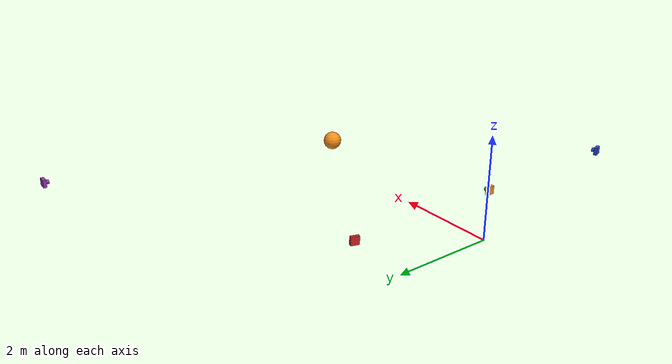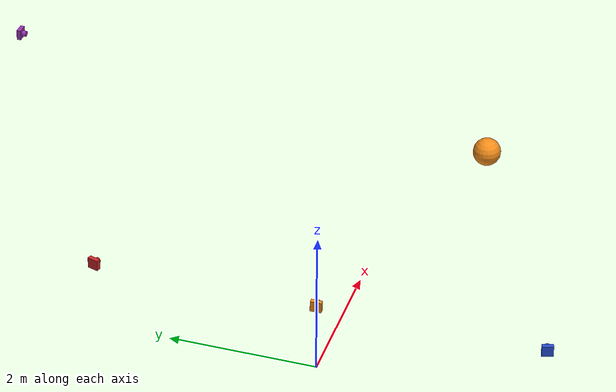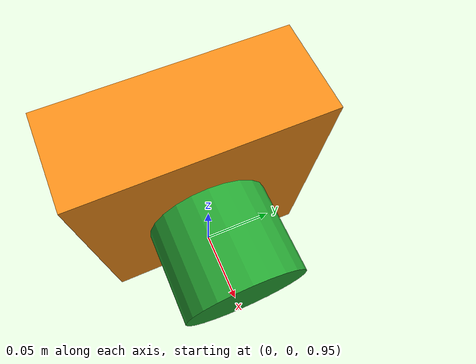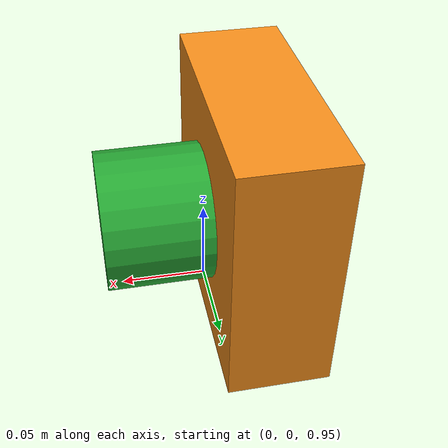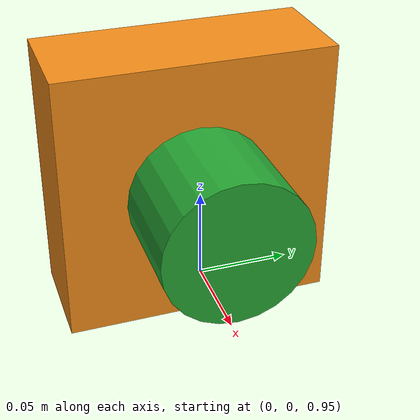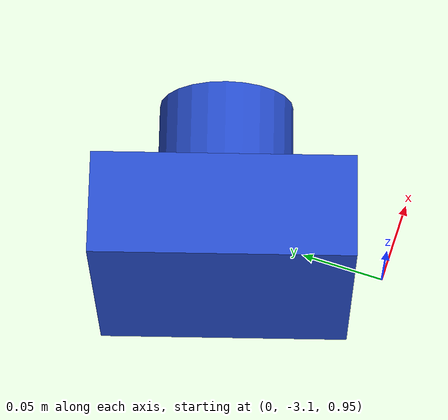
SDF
<sdf version='1.7'>
  <world name='anytrack'>
    <!-- ROS -->
    <plugin name='gazebo_ros_state' filename='libgazebo_ros_state.so'>
      <ros>
        <namespace>/simulation</namespace>
        <argument>model_states:=model_states_demo</argument>
      </ros>
      <update_rate>1.0</update_rate>
    </plugin>
    <!-- Sun -->
    <light name='sun' type='directional'>
      <cast_shadows>1</cast_shadows>
      <pose>0 0 10 0 -0 0</pose>
      <diffuse>0.8 0.8 0.8 1</diffuse>
      <specular>0.2 0.2 0.2 1</specular>
      <attenuation>
        <range>1000</range>
        <constant>0.9</constant>
        <linear>0.01</linear>
        <quadratic>0.001</quadratic>
      </attenuation>
      <direction>-0.5 0.1 -0.9</direction>
      <spot>
        <inner_angle>0</inner_angle>
        <outer_angle>0</outer_angle>
        <falloff>0</falloff>
      </spot>
    </light>
    <!-- Model -->
    <model name='anytrack-system'>
      <!-- Joints -->
      <!-- cam0 -->
      <joint name='cam0_joint' type='fixed'>
        <pose relative_to='__model__'>0 0 1 0 -0 0</pose>
        <parent>world</parent>
        <child>cam0_link</child>
      </joint>
      <!-- cam1 -->
      <joint name='cam1_joint' type='fixed'>
        <pose relative_to='__model__'>0 3 1 0 0 -0.3</pose>
        <parent>world</parent>
        <child>cam1_link</child>
      </joint>
      <!-- cam2 -->
      <joint name='cam2_joint' type='fixed'>
        <pose relative_to='__model__'>0.0 -3 1.0 0 0.0 0.3</pose>
        <parent>world</parent>
        <child>cam2_link</child>
      </joint>
      <!-- cam3 -->
      <joint name='cam3_joint' type='fixed'>
        <pose relative_to='__model__'>5 6 1.0 0 -0.0 -1.6</pose>
        <parent>world</parent>
        <child>cam3_link</child>
      </joint>
      <!-- Links -->
      <!-- cam0 -->
      <link name='cam0_link'>
        <pose relative_to='cam0_joint'>0 0 0 0 -0 0</pose>
        <!-- Visuals -->
        <visual name="cam0_link_visual">
          <pose>-0.03 0 0 0 -0 0</pose>
          <geometry>
            <box>
              <size>0.06 0.15 0.15</size>
            </box>
          </geometry>
          <material>
            <script>
              <name>Gazebo/Orange</name>
              <uri>file://media/materials/scripts/gazebo.material</uri>
            </script>
          </material>
        </visual>
        <visual name='cam0_link_visual_1'>
          <pose>0.03 0 0 3.14159 1.57079 3.14159</pose>
          <geometry>
            <cylinder>
              <length>0.06</length>
              <radius>0.04</radius>
            </cylinder>
          </geometry>
          <material>
            <script>
              <name>Gazebo/Green</name>
              <uri>file://media/materials/scripts/gazebo.material</uri>
            </script>
          </material>
        </visual>
        <!-- Sensor Info -->
        <sensor name='cam0' type='camera'>
          <update_rate>60</update_rate>
          <visualize>1</visualize>
          <camera name='cam0'>
            <horizontal_fov>1.39626</horizontal_fov>
            <image>
              <width>1280</width>
              <height>720</height>
              <format>R8G8B8</format>
            </image>
            <clip>
              <near>0.02</near>
              <far>300</far>
            </clip>
          </camera>
          <plugin name='cam0_controller' filename='libgazebo_ros_camera.so'>
            <frame_name>cam0_position</frame_name>
            <min_depth>0.1</min_depth>
            <max_depth>500</max_depth>
          </plugin>
        </sensor>
      </link>
      <!-- cam1 -->
      <link name='cam1_link'>
        <pose relative_to='cam1_joint'>0 0 0 0 -0 0</pose>
        <!-- Visuals -->
        <visual name="cam1_link_visual">
          <pose>-0.03 0 0 0 -0 0</pose>
          <geometry>
            <box>
              <size>0.06 0.15 0.15</size>
            </box>
          </geometry>
          <material>
            <script>
              <name>Gazebo/Red</name>
              <uri>file://media/materials/scripts/gazebo.material</uri>
            </script>
          </material>
        </visual>
        <visual name='cam1_link_visual_1'>
          <pose>0.03 0 0 3.14159 1.57079 3.14159</pose>
          <geometry>
            <cylinder>
              <length>0.06</length>
              <radius>0.04</radius>
            </cylinder>
          </geometry>
          <material>
            <script>
              <name>Gazebo/Red</name>
              <uri>file://media/materials/scripts/gazebo.material</uri>
            </script>
          </material>
        </visual>
        <!-- Sensor Info -->
        <sensor name='cam1' type='camera'>
          <update_rate>60</update_rate>
          <visualize>1</visualize>
          <camera name='cam1'>
            <horizontal_fov>1.39626</horizontal_fov>
            <image>
              <width>1280</width>
              <height>720</height>
              <format>R8G8B8</format>
            </image>
            <clip>
              <near>0.02</near>
              <far>300</far>
            </clip>
          </camera>
          <plugin name='cam1_controller' filename='libgazebo_ros_camera.so'>
            <frame_name>cam1_position</frame_name>
            <min_depth>0.1</min_depth>
            <max_depth>500</max_depth>
          </plugin>
        </sensor>
      </link>
      <!-- cam2 -->
      <link name='cam2_link'>
        <pose relative_to='cam2_joint'>0 0 0 0 -0 0</pose>
        <!-- Visuals -->
        <visual name="cam2_link_visual">
          <pose>-0.03 0 0 0 -0 0</pose>
          <geometry>
            <box>
              <size>0.06 0.15 0.15</size>
            </box>
          </geometry>
          <material>
            <script>
              <name>Gazebo/Blue</name>
              <uri>file://media/materials/scripts/gazebo.material</uri>
            </script>
          </material>
        </visual>
        <visual name='cam2_link_visual_1'>
          <pose>0.03 0 0 3.14159 1.57079 3.14159</pose>
          <geometry>
            <cylinder>
              <length>0.06</length>
              <radius>0.04</radius>
            </cylinder>
          </geometry>
          <material>
            <script>
              <name>Gazebo/Blue</name>
              <uri>file://media/materials/scripts/gazebo.material</uri>
            </script>
          </material>
        </visual>
        <!-- Sensor Info -->
        <sensor name='cam2' type='camera'>
          <update_rate>60</update_rate>
          <visualize>1</visualize>
          <camera name='cam2'>
            <horizontal_fov>1.39626</horizontal_fov>
            <image>
              <width>1280</width>
              <height>720</height>
              <format>R8G8B8</format>
            </image>
            <clip>
              <near>0.02</near>
              <far>300</far>
            </clip>
          </camera>
          <plugin name='cam2_controller' filename='libgazebo_ros_camera.so'>
            <frame_name>cam2_position</frame_name>
            <min_depth>0.1</min_depth>
            <max_depth>500</max_depth>
          </plugin>
        </sensor>
      </link>
            <!-- cam3 -->
      <link name='cam3_link'>
        <pose relative_to='cam3_joint'>0 0 0 0 -0 0</pose>
        <!-- Visuals -->
        <visual name="cam3_link_visual">
          <pose>-0.03 0 0 0 -0 0</pose>
          <geometry>
            <box>
              <size>0.06 0.15 0.15</size>
            </box>
          </geometry>
          <material>
            <script>
              <name>Gazebo/Purple</name>
              <uri>file://media/materials/scripts/gazebo.material</uri>
            </script>
          </material>
        </visual>
        <visual name='cam3_link_visual_1'>
          <pose>0.03 0 0 3.14159 1.57079 3.14159</pose>
          <geometry>
            <cylinder>
              <length>0.06</length>
              <radius>0.04</radius>
            </cylinder>
          </geometry>
          <material>
            <script>
              <name>Gazebo/Purple</name>
              <uri>file://media/materials/scripts/gazebo.material</uri>
            </script>
          </material>
        </visual>
        <!-- Sensor Info -->
        <sensor name='cam3' type='camera'>
          <update_rate>60</update_rate>
          <visualize>1</visualize>
          <camera name='cam3'>
            <horizontal_fov>1.39626</horizontal_fov>
            <image>
              <width>1280</width>
              <height>720</height>
              <format>R8G8B8</format>
            </image>
            <clip>
              <near>0.02</near>
              <far>300</far>
            </clip>
          </camera>
          <plugin name='cam3_controller' filename='libgazebo_ros_camera.so'>
            <frame_name>cam3_position</frame_name>
            <min_depth>0.1</min_depth>
            <max_depth>500</max_depth>
          </plugin>
        </sensor>
      </link>
      <pose>0 0 0 0 -0 0</pose>
    </model>
    <!-- Gui -->
    <gui fullscreen='0'>
      <camera name='user_camera'>
        <pose>-6 4 3 0 0.2 -0.4</pose>
        <view_controller>orbit</view_controller>
        <projection_type>perspective</projection_type>
      </camera>
    </gui>
    <!-- Ball -->
    <model name='ball_0'>
      <link name='link_0'>
        <pose>0 0 0 0 -0 0</pose>
        <gravity>0</gravity>
        <self_collide>0</self_collide>
        <kinematic>0</kinematic>
        <enable_wind>0</enable_wind>
        <visual name='visual'>
          <pose>0 0 0 0 -0 0</pose>
          <geometry>
            <sphere>
              <radius>0.20</radius>
            </sphere>
          </geometry>
          <material>
            <lighting>1</lighting>
            <script>
              <uri>file://media/materials/scripts/gazebo.material</uri>
              <name>Gazebo/Orange</name>
            </script>
            <shader type='pixel'>
              <normal_map>__default__</normal_map>
            </shader>
            <ambient>0 1 0 1</ambient>
            <diffuse>0 1 0 1</diffuse>
            <specular>0 1 0 1</specular>
            <emissive>0 1 0 1</emissive>
          </material>
          <transparency>0</transparency>
          <cast_shadows>1</cast_shadows>
        </visual>
      </link>
      <static>0</static>
      <allow_auto_disable>1</allow_auto_disable>
      <pose>5.53954 -0.831899 0 0 -0 0</pose>
    </model>
  </world>
</sdf>
